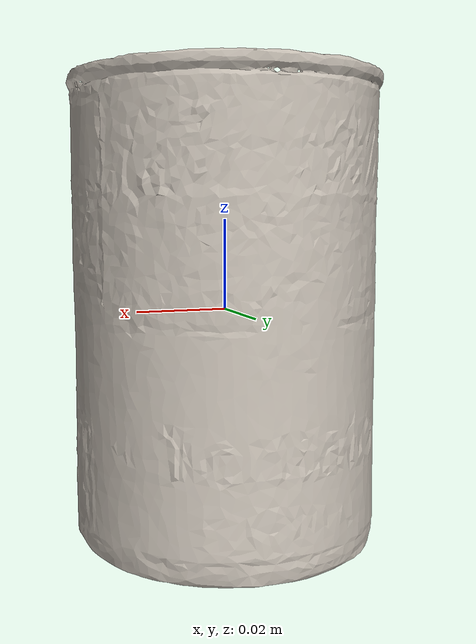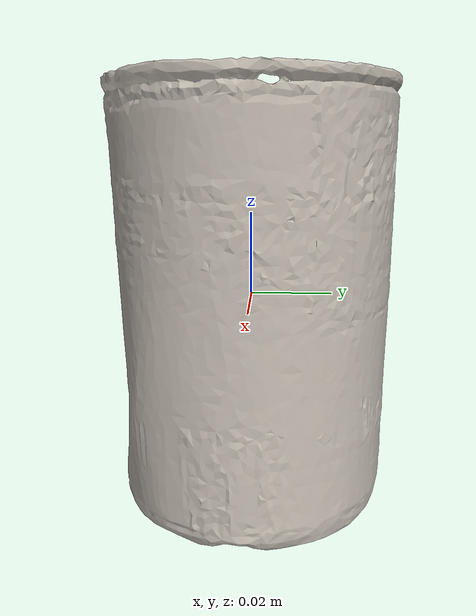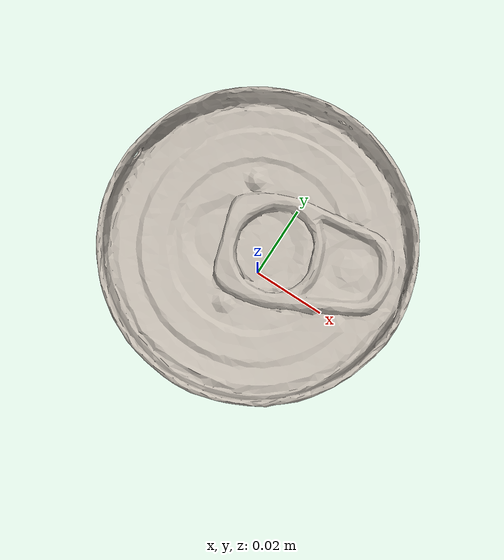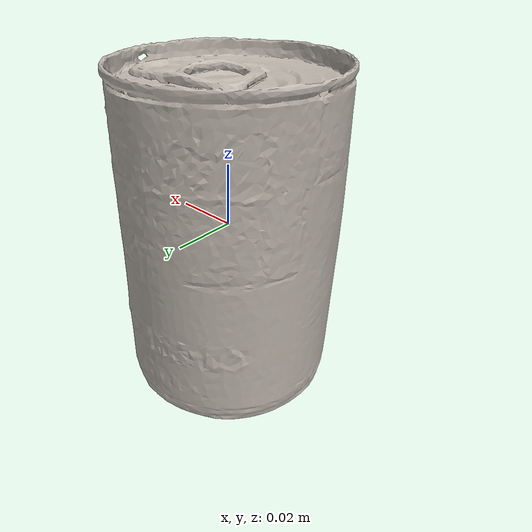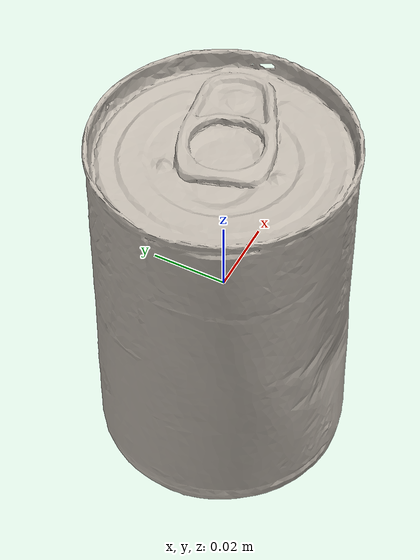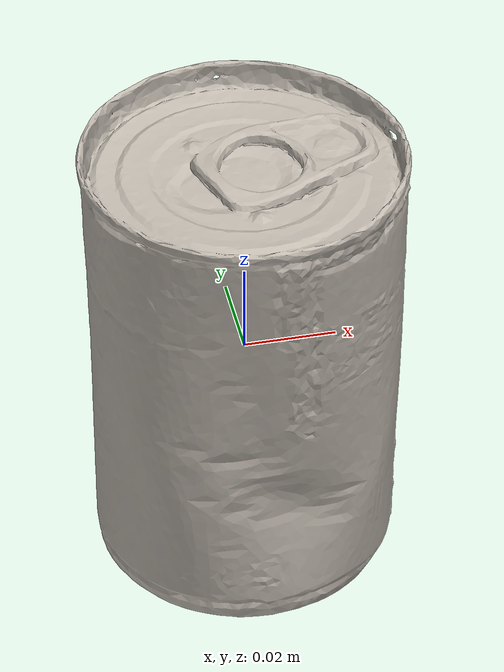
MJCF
<mujoco model="tomato_soup_can">
  <default>
    <default class="visual">
      <geom group="1" type="mesh" contype="0" conaffinity="0"/>
    </default>
    <default class="collision">
      <geom group="0" type="mesh"/>
    </default>
  </default>
  <asset>
    <texture type="2d" name="tomato_soup_can" file="tomato_soup_can.png"/>
    <material name="tomato_soup_can" texture="tomato_soup_can" specular="0.4000000000000001" shininess="0.001"/>
    <mesh name="tomato_soup_can" file="tomato_soup_can.obj"/>
  </asset>
  <worldbody>
    <body>
    <body name="object">
      <geom material="tomato_soup_can" mesh="tomato_soup_can" class="visual"/>
      <geom mesh="tomato_soup_can" class="collision"/>
    </body>
      <site rgba="0 0 0 0" size="0.005" pos="0 0 -0.04" name="bottom_site" />
      <site rgba="0 0 0 0" size="0.005" pos="0 0 0.04" name="top_site" />
      <site rgba="0 0 0 0" size="0.005" pos="0.005 0.005 0" name="horizontal_radius_site" />
   </body>
  </worldbody>
</mujoco>
